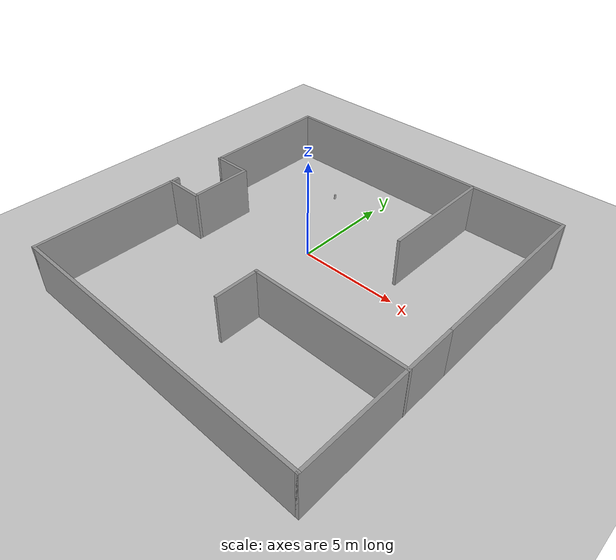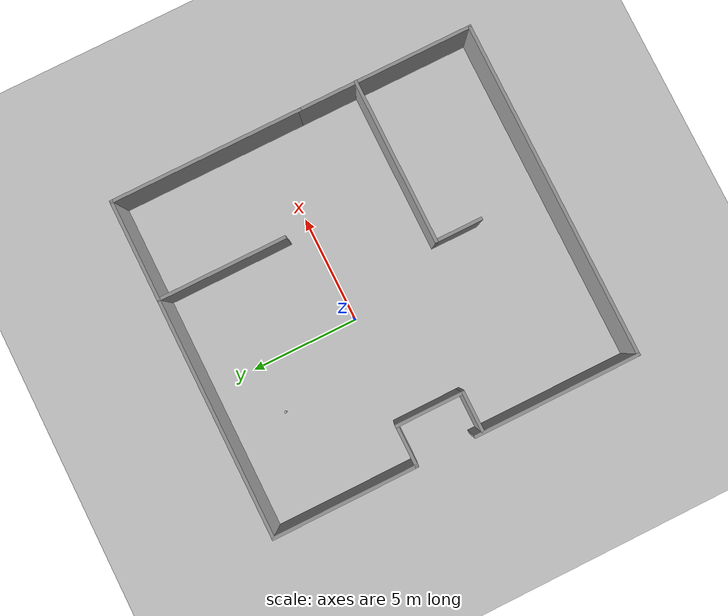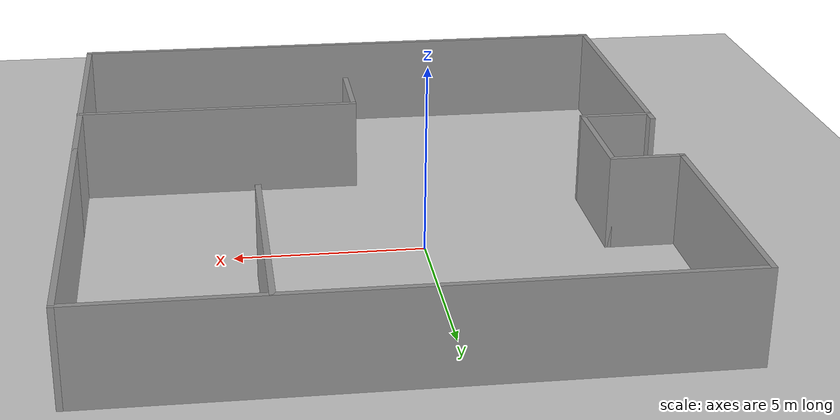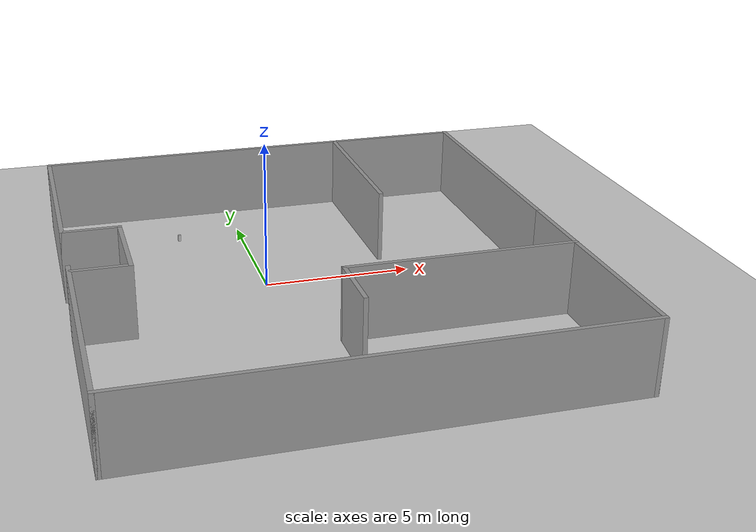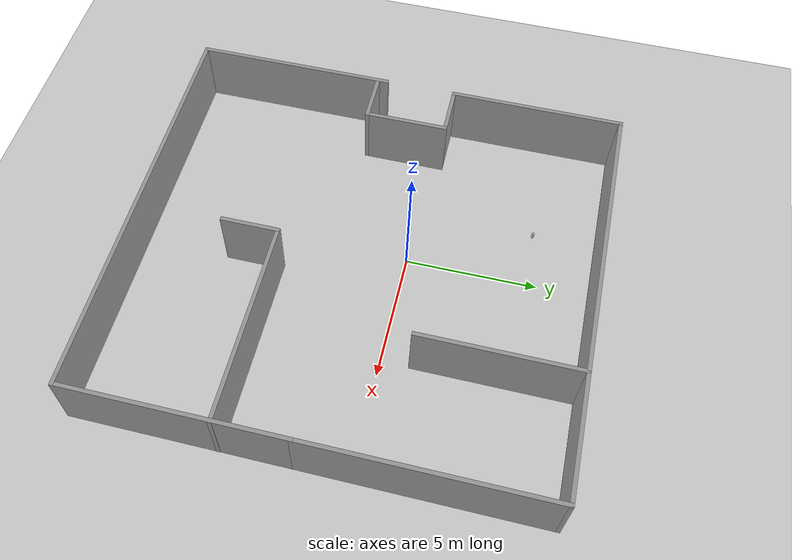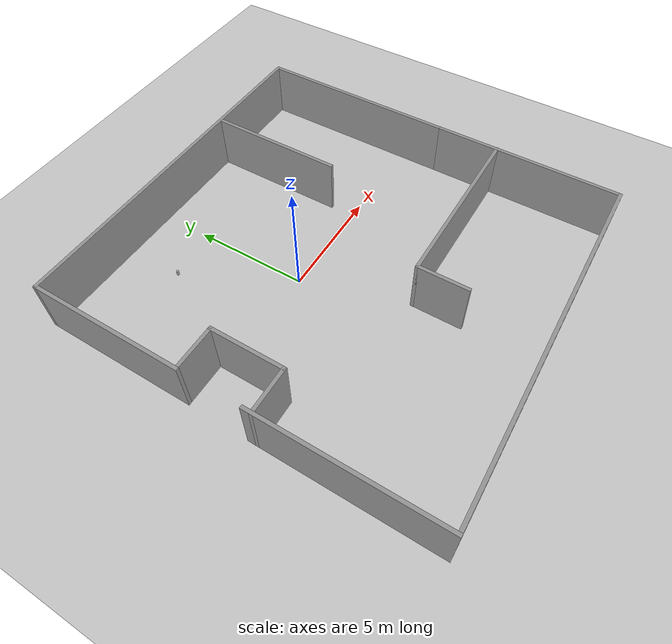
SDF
<sdf version="1.6">
 <world name="default">
  <light name="sun" type="directional">
   <pose>0 0 10 0 -0 0</pose>
   <diffuse>0.8 0.8 0.8 1</diffuse>
   <specular>0.2 0.2 0.2 1</specular>
   <attenuation>
    <range>1000</range>
    <constant>0.9</constant>
    <linear>0.01</linear>
    <quadratic>0.001</quadratic>
   </attenuation>
   <direction>-0.5 0.1 -0.9</direction>
  </light>
  <model name="ground_plane">
   <static>1</static>
   <link name="link">
    <collision name="collision">
     <geometry><plane><normal>0 0 1</normal><size>100 100</size></plane></geometry>
     <surface>
      <contact><collide_bitmask>65535</collide_bitmask></contact>
      <friction><ode><mu>100</mu><mu2>50</mu2></ode></friction>
     </surface>
    </collision>
    <visual name="visual">
     <cast_shadows>0</cast_shadows>
     <geometry><plane><normal>0 0 1</normal><size>100 100</size></plane></geometry>
     <material>
      <script><uri>file://media/materials/scripts/gazebo.material</uri><name>Gazebo/Grey</name></script>
     </material>
    </visual>
   </link>
  </model>
  <gravity>0 0 -9.8</gravity>
  <magnetic_field>6e-06 2.3e-05 -4.2e-05</magnetic_field>
  <atmosphere type="adiabatic"/>
  <physics name="default_physics" default="0" type="ode">
   <max_step_size>0.001</max_step_size>
   <real_time_factor>1</real_time_factor>
   <real_time_update_rate>1000</real_time_update_rate>
  </physics>
  <scene><ambient>0.4 0.4 0.4 1</ambient><background>0.7 0.7 0.7 1</background><shadows>1</shadows></scene>
  <spherical_coordinates>
   <surface_model>EARTH_WGS84</surface_model>
   <latitude_deg>0</latitude_deg>
   <longitude_deg>0</longitude_deg>
   <elevation>0</elevation>
   <heading_deg>0</heading_deg>
  </spherical_coordinates>
  <model name="myword">
   <pose>1.18077 -1.48241 0 0 -0 0</pose>
   <link name="Wall_12">
    <collision name="Wall_12_Collision">
     <geometry><box><size>7.75 0.15 2.5</size></box></geometry>
     <pose>0 0 1.25 0 -0 0</pose>
    </collision>
    <visual name="Wall_12_Visual">
     <pose>0 0 1.25 0 -0 0</pose>
     <geometry><box><size>7.75 0.15 2.5</size></box></geometry>
     <material>
      <script><uri>file://media/materials/scripts/gazebo.material</uri><name>Gazebo/Grey</name></script>
      <ambient>1 1 1 1</ambient>
     </material>
     <meta><layer>0</layer></meta>
    </visual>
    <pose>-7.80676 -4.675 0 0 -0 -1.5708</pose>
   </link>
   <link name="Wall_13">
    <collision name="Wall_13_Collision">
     <geometry><box><size>15.75 0.15 2.5</size></box></geometry>
     <pose>0 0 1.25 0 -0 0</pose>
    </collision>
    <visual name="Wall_13_Visual">
     <pose>0 0 1.25 0 -0 0</pose>
     <geometry><box><size>15.75 0.15 2.5</size></box></geometry>
     <material>
      <script><uri>file://media/materials/scripts/gazebo.material</uri><name>Gazebo/Grey</name></script>
      <ambient>1 1 1 1</ambient>
     </material>
     <meta><layer>0</layer></meta>
    </visual>
    <pose>-0.006757 -8.475 0 0 -0 0</pose>
   </link>
   <link name="Wall_14">
    <collision name="Wall_14_Collision">
     <geometry><box><size>8.25 0.15 2.5</size></box></geometry>
     <pose>0 0 1.25 0 -0 0</pose>
    </collision>
    <visual name="Wall_14_Visual">
     <pose>0 0 1.25 0 -0 0</pose>
     <geometry><box><size>8.25 0.15 2.5</size></box></geometry>
     <material>
      <script><uri>file://media/materials/scripts/gazebo.material</uri><name>Gazebo/Grey</name></script>
      <ambient>1 1 1 1</ambient>
     </material>
     <meta><layer>0</layer></meta>
    </visual>
    <pose>7.79324 -4.425 0 0 -0 1.5708</pose>
   </link>
   <link name="Wall_15">
    <collision name="Wall_15_Collision">
     <geometry><box><size>9 0.15 2.5</size></box></geometry>
     <pose>0 0 1.25 0 -0 0</pose>
    </collision>
    <visual name="Wall_15_Visual">
     <pose>0 0 1.25 0 -0 0</pose>
     <geometry><box><size>9 0.15 2.5</size></box></geometry>
     <material>
      <script><uri>file://media/materials/scripts/gazebo.material</uri><name>Gazebo/Grey</name></script>
      <ambient>1 1 1 1</ambient>
     </material>
     <meta><layer>0</layer></meta>
    </visual>
    <pose>7.79324 4.05 0 0 -0 1.5708</pose>
   </link>
   <link name="Wall_16">
    <collision name="Wall_16_Collision">
     <geometry><box><size>15.75 0.15 2.5</size></box></geometry>
     <pose>0 0 1.25 0 -0 0</pose>
    </collision>
    <visual name="Wall_16_Visual">
     <pose>0 0 1.25 0 -0 0</pose>
     <geometry><box><size>15.75 0.15 2.5</size></box></geometry>
     <material>
      <script><uri>file://media/materials/scripts/gazebo.material</uri><name>Gazebo/Grey</name></script>
      <ambient>1 1 1 1</ambient>
     </material>
     <meta><layer>0</layer></meta>
    </visual>
    <pose>-0.006757 8.475 0 0 -0 3.14159</pose>
   </link>
   <link name="Wall_17">
    <collision name="Wall_17_Collision">
     <geometry><box><size>6.75 0.15 2.5</size></box></geometry>
     <pose>0 0 1.25 0 -0 0</pose>
    </collision>
    <visual name="Wall_17_Visual">
     <pose>0 0 1.25 0 -0 0</pose>
     <geometry><box><size>6.75 0.15 2.5</size></box></geometry>
     <material>
      <script><uri>file://media/materials/scripts/gazebo.material</uri><name>Gazebo/Grey</name></script>
      <ambient>1 1 1 1</ambient>
     </material>
     <meta><layer>0</layer></meta>
    </visual>
    <pose>-7.80676 5.175 0 0 -0 -1.5708</pose>
   </link>
   <link name="Wall_18">
    <collision name="Wall_18_Collision">
     <geometry><box><size>2 0.15 2.5</size></box></geometry>
     <pose>0 0 1.25 0 -0 0</pose>
    </collision>
    <visual name="Wall_18_Visual">
     <pose>0 0 1.25 0 -0 0</pose>
     <geometry><box><size>2 0.15 2.5</size></box></geometry>
     <material>
      <script><uri>file://media/materials/scripts/gazebo.material</uri><name>Gazebo/Grey</name></script>
      <ambient>1 1 1 1</ambient>
     </material>
     <meta><layer>0</layer></meta>
    </visual>
    <pose>-6.88176 1.875 0 0 -0 0</pose>
   </link>
   <link name="Wall_19">
    <collision name="Wall_19_Collision">
     <geometry><box><size>3.25 0.15 2.5</size></box></geometry>
     <pose>0 0 1.25 0 -0 0</pose>
    </collision>
    <visual name="Wall_19_Visual">
     <pose>0 0 1.25 0 -0 0</pose>
     <geometry><box><size>3.25 0.15 2.5</size></box></geometry>
     <material>
      <script><uri>file://media/materials/scripts/gazebo.material</uri><name>Gazebo/Grey</name></script>
      <ambient>1 1 1 1</ambient>
     </material>
     <meta><layer>0</layer></meta>
    </visual>
    <pose>-5.95676 0.325 0 0 -0 -1.5708</pose>
   </link>
   <link name="Wall_20">
    <collision name="Wall_20_Collision">
     <geometry><box><size>2 0.15 2.5</size></box></geometry>
     <pose>0 0 1.25 0 -0 0</pose>
    </collision>
    <visual name="Wall_20_Visual">
     <pose>0 0 1.25 0 -0 0</pose>
     <geometry><box><size>2 0.15 2.5</size></box></geometry>
     <material>
      <script><uri>file://media/materials/scripts/gazebo.material</uri><name>Gazebo/Grey</name></script>
      <ambient>1 1 1 1</ambient>
     </material>
     <meta><layer>0</layer></meta>
    </visual>
    <pose>-6.88176 -1.225 0 0 -0 3.14159</pose>
   </link>
   <link name="Wall_23">
    <collision name="Wall_23_Collision">
     <geometry><box><size>6 0.15 2.5</size></box></geometry>
     <pose>0 0 1.25 0 -0 0</pose>
    </collision>
    <visual name="Wall_23_Visual">
     <pose>0 0 1.25 0 -0 0</pose>
     <geometry><box><size>6 0.15 2.5</size></box></geometry>
     <material>
      <script><uri>file://media/materials/scripts/gazebo.material</uri><name>Gazebo/Grey</name></script>
      <ambient>1 1 1 1</ambient>
     </material>
     <meta><layer>0</layer></meta>
    </visual>
    <pose>3.17696 5.52384 0 0 -0 -1.5708</pose>
   </link>
   <link name="Wall_25">
    <collision name="Wall_25_Collision">
     <geometry><box><size>7.75 0.15 2.5</size></box></geometry>
     <pose>0 0 1.25 0 -0 0</pose>
    </collision>
    <visual name="Wall_25_Visual">
     <pose>0 0 1.25 0 -0 0</pose>
     <geometry><box><size>7.75 0.15 2.5</size></box></geometry>
     <material>
      <script><uri>file://media/materials/scripts/gazebo.material</uri><name>Gazebo/Grey</name></script>
      <ambient>1 1 1 1</ambient>
     </material>
     <meta><layer>0</layer></meta>
    </visual>
    <pose>4.00676 -3.0521 0 0 -0 3.14159</pose>
   </link>
   <link name="Wall_26">
    <collision name="Wall_26_Collision">
     <geometry><box><size>2.25 0.15 2.5</size></box></geometry>
     <pose>0 0 1.25 0 -0 0</pose>
    </collision>
    <visual name="Wall_26_Visual">
     <pose>0 0 1.25 0 -0 0</pose>
     <geometry><box><size>2.25 0.15 2.5</size></box></geometry>
     <material>
      <script><uri>file://media/materials/scripts/gazebo.material</uri><name>Gazebo/Grey</name></script>
      <ambient>1 1 1 1</ambient>
     </material>
     <meta><layer>0</layer></meta>
    </visual>
    <pose>0.206757 -4.1021 0 0 -0 -1.5708</pose>
   </link>
   <static>1</static>
  </model>
  <model name="beer">
   <link name="link">
    <pose>0 0 0.115 0 -0 0</pose>
    <inertial>
     <mass>0.39</mass>
     <inertia><ixx>0.00058</ixx><ixy>0</ixy><ixz>0</ixz><iyy>0.00058</iyy><iyz>0</iyz><izz>0.00019</izz></inertia>
    </inertial>
    <collision name="collision">
     <geometry><cylinder><radius>0.055</radius><length>0.23</length></cylinder></geometry>
    </collision>
    <visual name="visual">
     <geometry><cylinder><radius>0.055</radius><length>0.23</length></cylinder></geometry>
     <material>
      <script>
       <uri>model://beer/materials/scripts</uri>
       <uri>model://beer/materials/textures</uri>
       <name>Beer/Diffuse</name>
      </script>
     </material>
    </visual>
   </link>
   <pose>-2.26688 4.53476 -2e-06 1e-06 -0 -5e-06</pose>
  </model>
 </world>
</sdf>
